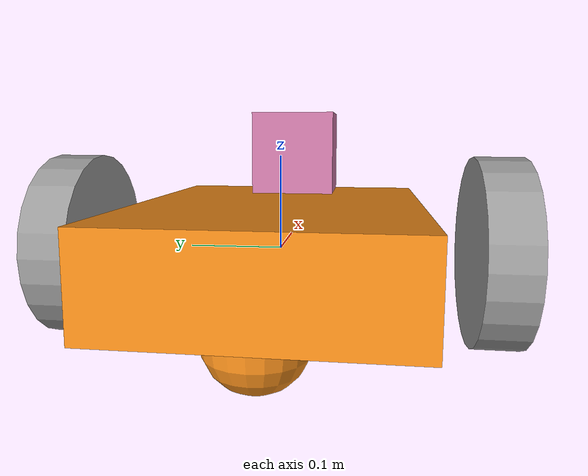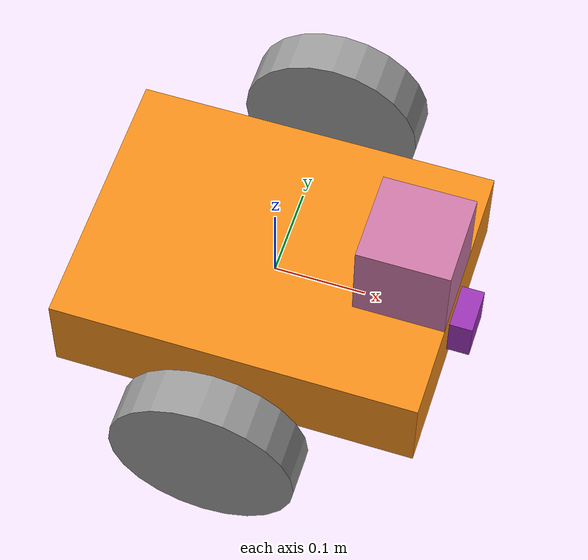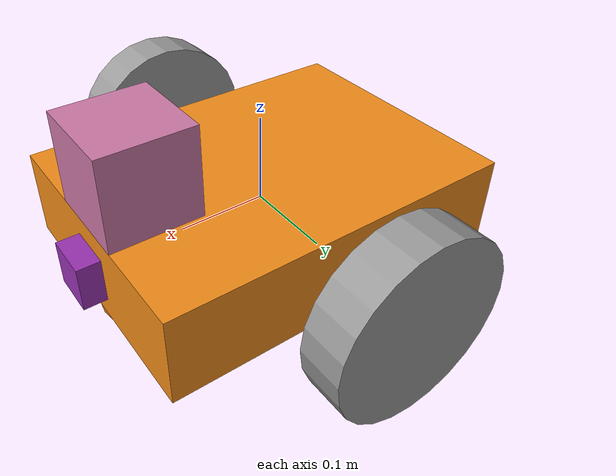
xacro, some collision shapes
<?xml version='1.0'?>

<robot name="my_robot" xmlns:xacro="http://www.ros.org/wiki/xacro">

  <xacro:include filename="$(find my_robot)/urdf/my_robot.gazebo" />

  <gazebo reference="chassis">
    <material>Gazebo/Orange</material>
  </gazebo>

  <gazebo reference="left_wheel">
    <material>Gazebo/Gray</material>
  </gazebo>

  <gazebo reference="right_wheel">
    <material>Gazebo/Gray</material>
  </gazebo>

  <gazebo reference="camera">
    <material>Gazebo/PurpleGlow</material>
  </gazebo>

  <link name="robot_footprint"></link>

  <joint name="robot_footprint_joint" type="fixed">
    <origin xyz="0 0 0" rpy="0 0 0" />
    <parent link="robot_footprint" />
    <child link="chassis" />
  </joint>

  <link name='chassis'>
    <pose>0 0 0.1 0 0 0</pose>

    <inertial>
      <mass value="15.0" />
      <origin xyz="0.0 0 0" rpy=" 0 0 0" />
      <inertia
        ixx="0.1" ixy="0" ixz="0"
        iyy="0.1" iyz="0"
        izz="0.1"
      />
    </inertial>

    <collision name='collision'>
      <origin xyz="0 0 0" rpy=" 0 0 0" />
      <geometry>
        <box size=".4 .3 .1" />
      </geometry>
    </collision>

    <visual name='chassis_visual'>
      <origin xyz="0 0 0" rpy=" 0 0 0" />
      <geometry>
        <box size=".4 .3 .1" />
      </geometry>
    </visual>

    <collision name='back_caster_collision'>
      <origin xyz="-0.15 0 -0.05" rpy=" 0 0 0" />
      <geometry>
        <sphere radius="0.0499" />
      </geometry>
    </collision>

    <visual name='back_caster_visual'>
      <origin xyz="-0.15 0 -0.05" rpy=" 0 0 0" />
      <geometry>
        <sphere radius="0.05" />
      </geometry>
    </visual>

    <collision name='front_caster_collision'>
      <origin xyz="0.15 0 -0.05" rpy=" 0 0 0" />
      <geometry>
        <sphere radius="0.0499" />
      </geometry>
    </collision>

    <visual name='front_caster_visual'>
      <origin xyz="0.15 0 -0.05" rpy=" 0 0 0" />
      <geometry>
        <sphere radius="0.05" />
      </geometry>
    </visual>

  </link>

  <link name="left_wheel">
    <inertial>
      <origin xyz="0 0 0" rpy="0 1.5707 1.5707" />
      <mass value="5" />
      <inertia
        ixx="0.1" ixy="0" ixz="0"
        iyy="0.1" iyz="0" izz="0.1"
      />
    </inertial>

    <collision>
      <origin xyz="0 0 0" rpy="0 1.5707 1.5707" />
      <geometry>
        <cylinder radius="0.1" length="0.05" />
      </geometry>
    </collision>

    <visual>
      <origin xyz="0 0 0" rpy="0 1.5707 1.5707" />
      <geometry>
        <cylinder radius="0.1" length="0.05" />
      </geometry>
    </visual>

  </link>

  <link name="right_wheel">
    <inertial>
      <origin xyz="0 0 0" rpy="0 1.5707 1.5707" />
      <mass value="5" />
      <inertia
        ixx="0.1" ixy="0" ixz="0"
        iyy="0.1" iyz="0" izz="0.1"
      />
    </inertial>

    <collision>
      <origin xyz="0 0 0" rpy="0 1.5707 1.5707" />
      <geometry>
        <cylinder radius="0.1" length="0.05" />
      </geometry>
    </collision>

    <visual>
      <origin xyz="0 0 0" rpy="0 1.5707 1.5707" />
      <geometry>
        <cylinder radius="0.1" length="0.05" />
      </geometry>
    </visual>
  </link>

  <joint name="left_wheel_hinge" type="continuous">
    <origin xyz="0 0.225 0" rpy="0 0 0" />
    <child link="left_wheel" />
    <parent link="chassis" />
    <axis xyz="0 1 0" rpy="0 0 0" />
    <limit effort="10000" velocity="1000" />
    <dynamics damping="1.0" friction="1.0" />
  </joint>

  <joint name="right_wheel_hinge" type="continuous">
    <origin xyz="0 -0.225 0" rpy="0 0 0" />
    <child link="right_wheel" />
    <parent link="chassis" />
    <axis xyz="0 1 0" rpy="0 0 0" />
    <limit effort="10000" velocity="1000" />
    <dynamics damping="1.0" friction="1.0" />
  </joint>

  <link name="camera">
    <origin xyz="0 0 0" rpy="0 0 0" />

    <inertial>
      <mass value="0.1" />
      <inertia
        ixx="1e-6" ixy="0" ixz="0"
        iyy="1e-6" iyz="0" izz="1e-6"
      />
    </inertial>

    <collision>
      <geometry>
        <box size="0.05 0.05 0.05" />
      </geometry>
    </collision>

    <visual>
      <geometry>
        <box size="0.05 0.05 0.05" />
      </geometry>
    </visual>
  </link>

  <joint name="camera_joint" type="fixed">
    <axis xyz="0 1 0" />
    <origin xyz="0.2 0 0" rpy="0 0 0" />
    <parent link="chassis" />
    <child link="camera" />
  </joint>

<joint name="camera_optical_joint" type="fixed">
    		<origin xyz="0 0 0" rpy="-1.5707 0 -1.5707"/>
    		<parent link="camera"/>
    		<child link="optical_link"/>
  	</joint>

  	<link name="optical_link">
  	</link>

  <link name="hokuyo">
    <origin xyz="0 0 0" rpy="0 0 0" />

    <inertial>
      <mass value="1e-5" />
      <inertia
        ixx="1e-6" ixy="0" ixz="0"
        iyy="1e-6" iyz="0" izz="1e-6"
      />
    </inertial>

    <collision>
      <geometry>
        <box size=".1 .1 .1" />
      </geometry>
    </collision>

    <visual>
      <geometry>
        <mesh filename="package://my_robot/meshes/hokuyo.dae" />
      </geometry>
    </visual>
  </link>

  <joint name="hokuyo_joint" type="fixed">
    <axis xyz="0 1 0" />
    <origin xyz="0.15 0 0.1" rpy="0 0 0" />
    <parent link="chassis" />
    <child link="hokuyo" />
  </joint>

</robot>
